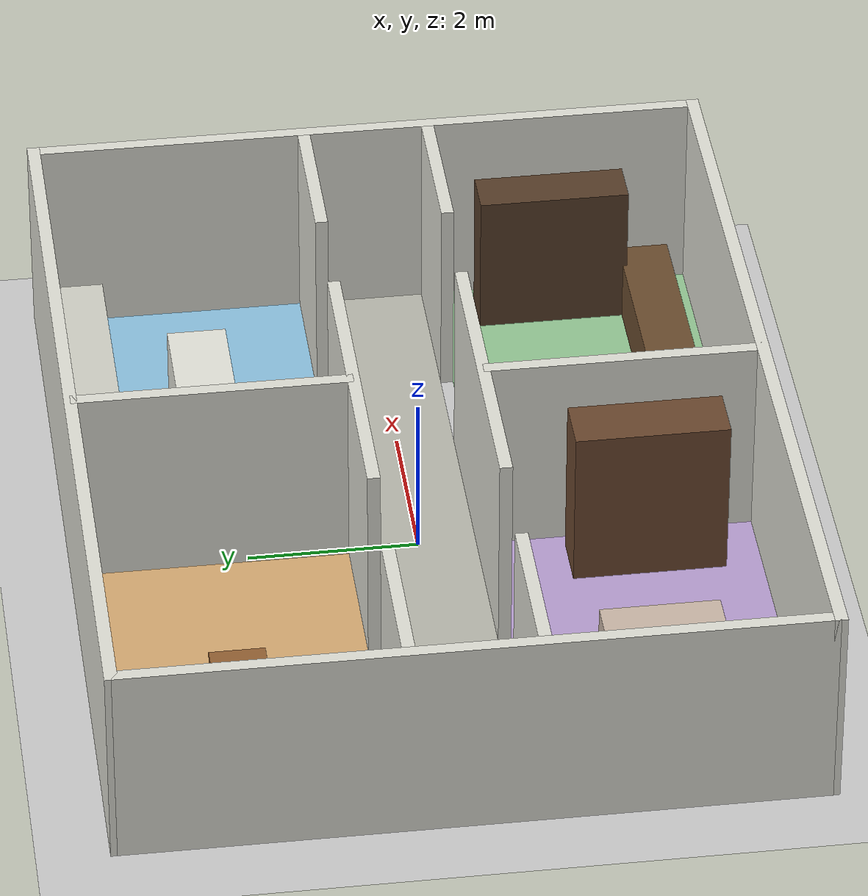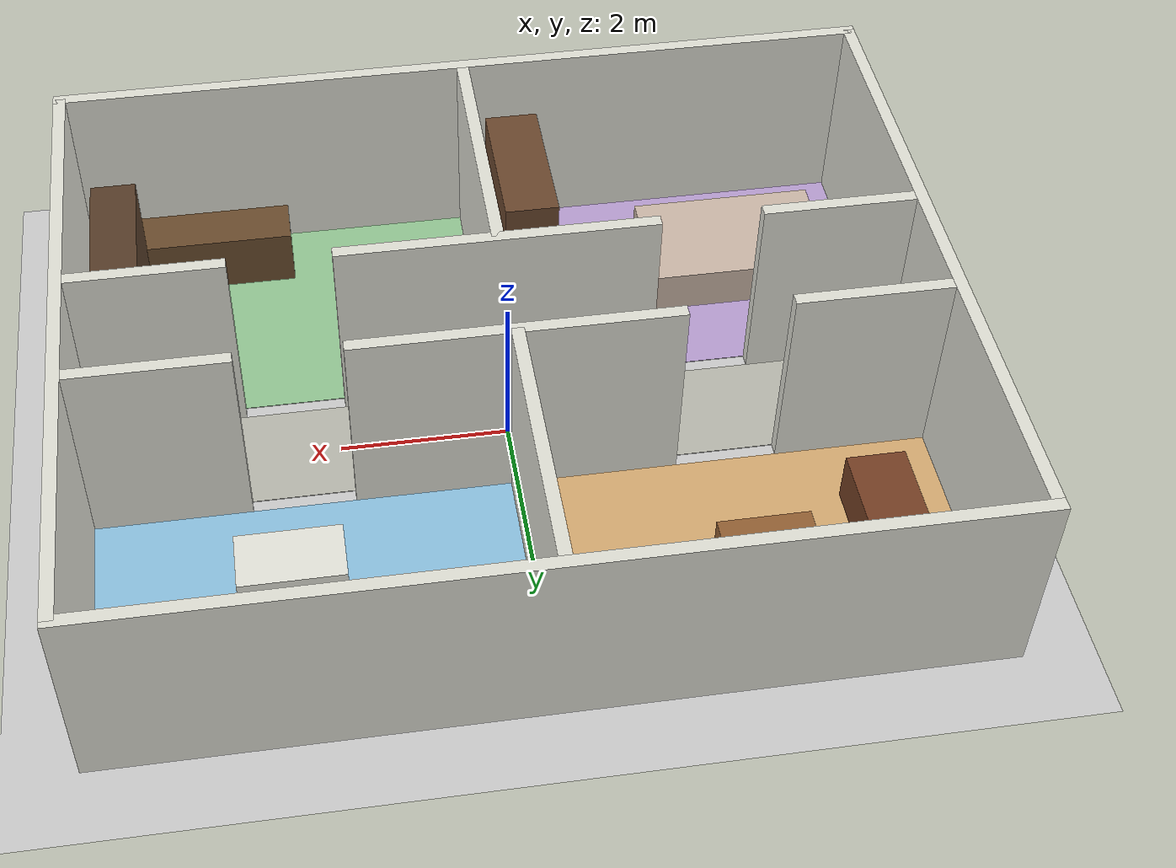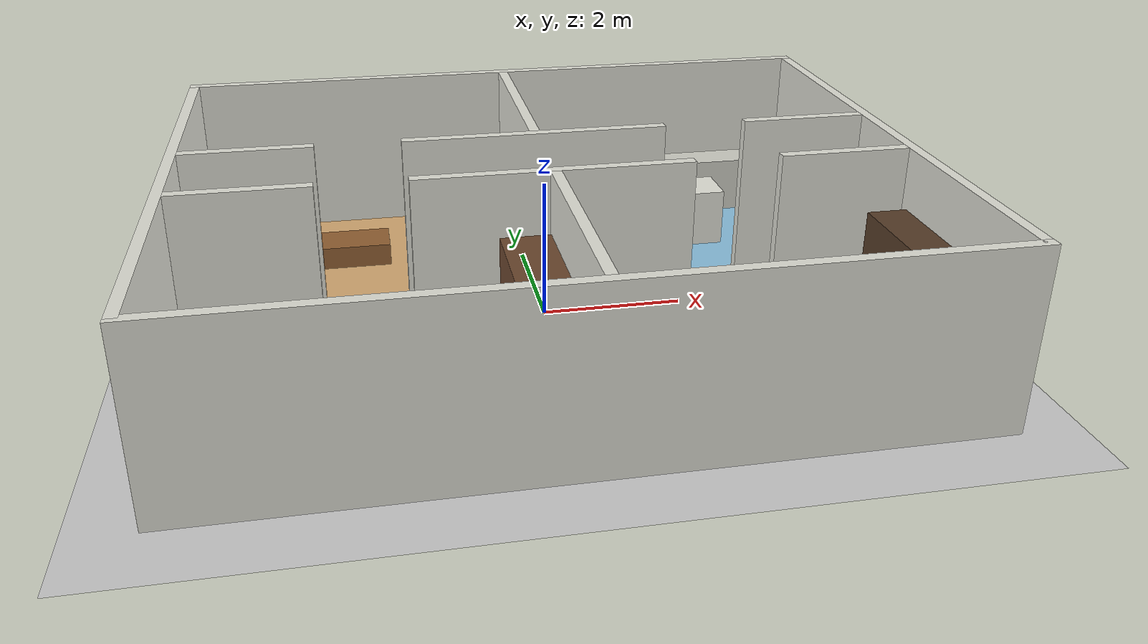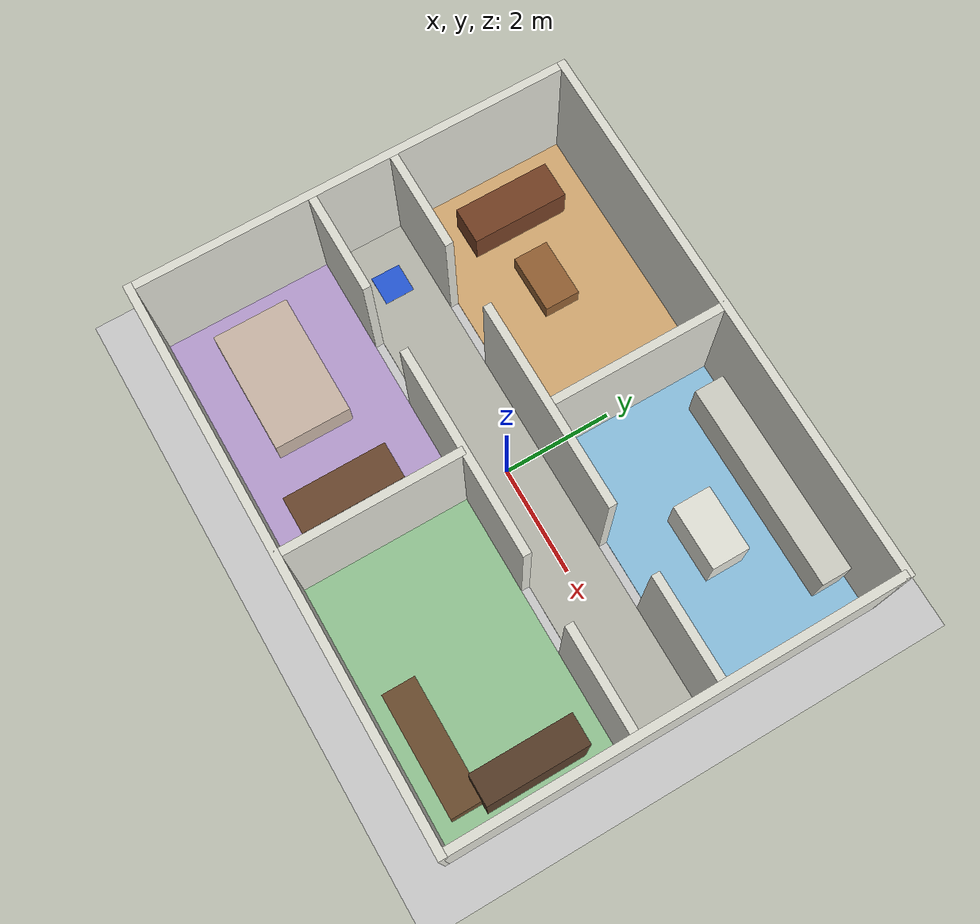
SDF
<?xml version='1.0' encoding='utf-8'?>
<sdf version="1.6">
  <world name="nlp_apartment">
    <include>
      <uri>model://ground_plane</uri>
    </include>
    <include>
      <uri>model://sun</uri>
    </include>
    <physics name="default_physics" type="ode">
      <max_step_size>0.001</max_step_size>
      <real_time_update_rate>1000</real_time_update_rate>
    </physics>
    <scene>
      <ambient>0.55 0.55 0.55 1</ambient>
      <background>0.78 0.82 0.86 1</background>
    </scene>
    <gui fullscreen="false">
      <camera name="apartment_camera">
        <pose>0 -11 10 0 0.65 1.57</pose>
        <view_controller>orbit</view_controller>
      </camera>
    </gui>
    <model name="floor_salon">
      <static>true</static>
      <pose>-2.5 2.375 0.002 0 0 0</pose>
      <link name="link">
        <visual name="visual">
          <geometry>
            <box>
              <size>4.85 3.1 0.01</size>
            </box>
          </geometry>
          <material>
            <ambient>0.84 0.67 0.45 1.0</ambient>
            <diffuse>0.84 0.67 0.45 1.0</diffuse>
          </material>
        </visual>
      </link>
    </model>
    <model name="floor_cuisine">
      <static>true</static>
      <pose>2.5 2.375 0.002 0 0 0</pose>
      <link name="link">
        <visual name="visual">
          <geometry>
            <box>
              <size>4.85 3.1 0.01</size>
            </box>
          </geometry>
          <material>
            <ambient>0.55 0.76 0.88 1.0</ambient>
            <diffuse>0.55 0.76 0.88 1.0</diffuse>
          </material>
        </visual>
      </link>
    </model>
    <model name="floor_chambre">
      <static>true</static>
      <pose>-2.5 -2.375 0.002 0 0 0</pose>
      <link name="link">
        <visual name="visual">
          <geometry>
            <box>
              <size>4.85 3.1 0.01</size>
            </box>
          </geometry>
          <material>
            <ambient>0.72 0.62 0.82 1.0</ambient>
            <diffuse>0.72 0.62 0.82 1.0</diffuse>
          </material>
        </visual>
      </link>
    </model>
    <model name="floor_bureau">
      <static>true</static>
      <pose>2.5 -2.375 0.002 0 0 0</pose>
      <link name="link">
        <visual name="visual">
          <geometry>
            <box>
              <size>4.85 3.1 0.01</size>
            </box>
          </geometry>
          <material>
            <ambient>0.58 0.78 0.58 1.0</ambient>
            <diffuse>0.58 0.78 0.58 1.0</diffuse>
          </material>
        </visual>
      </link>
    </model>
    <model name="floor_couloir">
      <static>true</static>
      <pose>0.0 0.0 0.002 0 0 0</pose>
      <link name="link">
        <visual name="visual">
          <geometry>
            <box>
              <size>9.85 1.35 0.01</size>
            </box>
          </geometry>
          <material>
            <ambient>0.72 0.72 0.68 1.0</ambient>
            <diffuse>0.72 0.72 0.68 1.0</diffuse>
          </material>
        </visual>
      </link>
    </model>
    <model name="floor_chargeur">
      <static>true</static>
      <pose>-4.0 0.0 0.002 0 0 0</pose>
      <link name="link">
        <visual name="visual">
          <geometry>
            <box>
              <size>0.55 0.55 0.015</size>
            </box>
          </geometry>
          <material>
            <ambient>0.15 0.35 0.85 1.0</ambient>
            <diffuse>0.15 0.35 0.85 1.0</diffuse>
          </material>
        </visual>
      </link>
    </model>
    <model name="wall_north">
      <static>true</static>
      <pose>0.0 4.0 1.25 0 0 0</pose>
      <link name="link">
        <collision name="collision">
          <geometry>
            <box>
              <size>10.15 0.15 2.5</size>
            </box>
          </geometry>
        </collision>
        <visual name="visual">
          <geometry>
            <box>
              <size>10.15 0.15 2.5</size>
            </box>
          </geometry>
          <material>
            <ambient>0.88 0.88 0.84 1.0</ambient>
            <diffuse>0.88 0.88 0.84 1.0</diffuse>
          </material>
        </visual>
      </link>
    </model>
    <model name="wall_south">
      <static>true</static>
      <pose>0.0 -4.0 1.25 0 0 0</pose>
      <link name="link">
        <collision name="collision">
          <geometry>
            <box>
              <size>10.15 0.15 2.5</size>
            </box>
          </geometry>
        </collision>
        <visual name="visual">
          <geometry>
            <box>
              <size>10.15 0.15 2.5</size>
            </box>
          </geometry>
          <material>
            <ambient>0.88 0.88 0.84 1.0</ambient>
            <diffuse>0.88 0.88 0.84 1.0</diffuse>
          </material>
        </visual>
      </link>
    </model>
    <model name="wall_west">
      <static>true</static>
      <pose>-5.0 0.0 1.25 0 0 0</pose>
      <link name="link">
        <collision name="collision">
          <geometry>
            <box>
              <size>0.15 8.0 2.5</size>
            </box>
          </geometry>
        </collision>
        <visual name="visual">
          <geometry>
            <box>
              <size>0.15 8.0 2.5</size>
            </box>
          </geometry>
          <material>
            <ambient>0.88 0.88 0.84 1.0</ambient>
            <diffuse>0.88 0.88 0.84 1.0</diffuse>
          </material>
        </visual>
      </link>
    </model>
    <model name="wall_east">
      <static>true</static>
      <pose>5.0 0.0 1.25 0 0 0</pose>
      <link name="link">
        <collision name="collision">
          <geometry>
            <box>
              <size>0.15 8.0 2.5</size>
            </box>
          </geometry>
        </collision>
        <visual name="visual">
          <geometry>
            <box>
              <size>0.15 8.0 2.5</size>
            </box>
          </geometry>
          <material>
            <ambient>0.88 0.88 0.84 1.0</ambient>
            <diffuse>0.88 0.88 0.84 1.0</diffuse>
          </material>
        </visual>
      </link>
    </model>
    <model name="wall_nw_hall">
      <static>true</static>
      <pose>-4.0125 0.75 1.25 0 0 0</pose>
      <link name="link">
        <collision name="collision">
          <geometry>
            <box>
              <size>1.825 0.15 2.5</size>
            </box>
          </geometry>
        </collision>
        <visual name="visual">
          <geometry>
            <box>
              <size>1.825 0.15 2.5</size>
            </box>
          </geometry>
          <material>
            <ambient>0.88 0.88 0.84 1.0</ambient>
            <diffuse>0.88 0.88 0.84 1.0</diffuse>
          </material>
        </visual>
      </link>
    </model>
    <model name="wall_n_center">
      <static>true</static>
      <pose>0.0 0.75 1.25 0 0 0</pose>
      <link name="link">
        <collision name="collision">
          <geometry>
            <box>
              <size>3.8 0.15 2.5</size>
            </box>
          </geometry>
        </collision>
        <visual name="visual">
          <geometry>
            <box>
              <size>3.8 0.15 2.5</size>
            </box>
          </geometry>
          <material>
            <ambient>0.88 0.88 0.84 1.0</ambient>
            <diffuse>0.88 0.88 0.84 1.0</diffuse>
          </material>
        </visual>
      </link>
    </model>
    <model name="wall_ne_hall">
      <static>true</static>
      <pose>4.0125 0.75 1.25 0 0 0</pose>
      <link name="link">
        <collision name="collision">
          <geometry>
            <box>
              <size>1.825 0.15 2.5</size>
            </box>
          </geometry>
        </collision>
        <visual name="visual">
          <geometry>
            <box>
              <size>1.825 0.15 2.5</size>
            </box>
          </geometry>
          <material>
            <ambient>0.88 0.88 0.84 1.0</ambient>
            <diffuse>0.88 0.88 0.84 1.0</diffuse>
          </material>
        </visual>
      </link>
    </model>
    <model name="wall_sw_hall">
      <static>true</static>
      <pose>-4.0125 -0.75 1.25 0 0 0</pose>
      <link name="link">
        <collision name="collision">
          <geometry>
            <box>
              <size>1.825 0.15 2.5</size>
            </box>
          </geometry>
        </collision>
        <visual name="visual">
          <geometry>
            <box>
              <size>1.825 0.15 2.5</size>
            </box>
          </geometry>
          <material>
            <ambient>0.88 0.88 0.84 1.0</ambient>
            <diffuse>0.88 0.88 0.84 1.0</diffuse>
          </material>
        </visual>
      </link>
    </model>
    <model name="wall_s_center">
      <static>true</static>
      <pose>0.0 -0.75 1.25 0 0 0</pose>
      <link name="link">
        <collision name="collision">
          <geometry>
            <box>
              <size>3.8 0.15 2.5</size>
            </box>
          </geometry>
        </collision>
        <visual name="visual">
          <geometry>
            <box>
              <size>3.8 0.15 2.5</size>
            </box>
          </geometry>
          <material>
            <ambient>0.88 0.88 0.84 1.0</ambient>
            <diffuse>0.88 0.88 0.84 1.0</diffuse>
          </material>
        </visual>
      </link>
    </model>
    <model name="wall_se_hall">
      <static>true</static>
      <pose>4.0125 -0.75 1.25 0 0 0</pose>
      <link name="link">
        <collision name="collision">
          <geometry>
            <box>
              <size>1.825 0.15 2.5</size>
            </box>
          </geometry>
        </collision>
        <visual name="visual">
          <geometry>
            <box>
              <size>1.825 0.15 2.5</size>
            </box>
          </geometry>
          <material>
            <ambient>0.88 0.88 0.84 1.0</ambient>
            <diffuse>0.88 0.88 0.84 1.0</diffuse>
          </material>
        </visual>
      </link>
    </model>
    <model name="wall_between_living_kitchen">
      <static>true</static>
      <pose>0.0 2.375 1.25 0 0 0</pose>
      <link name="link">
        <collision name="collision">
          <geometry>
            <box>
              <size>0.15 3.25 2.5</size>
            </box>
          </geometry>
        </collision>
        <visual name="visual">
          <geometry>
            <box>
              <size>0.15 3.25 2.5</size>
            </box>
          </geometry>
          <material>
            <ambient>0.88 0.88 0.84 1.0</ambient>
            <diffuse>0.88 0.88 0.84 1.0</diffuse>
          </material>
        </visual>
      </link>
    </model>
    <model name="wall_between_bed_office">
      <static>true</static>
      <pose>0.0 -2.375 1.25 0 0 0</pose>
      <link name="link">
        <collision name="collision">
          <geometry>
            <box>
              <size>0.15 3.25 2.5</size>
            </box>
          </geometry>
        </collision>
        <visual name="visual">
          <geometry>
            <box>
              <size>0.15 3.25 2.5</size>
            </box>
          </geometry>
          <material>
            <ambient>0.88 0.88 0.84 1.0</ambient>
            <diffuse>0.88 0.88 0.84 1.0</diffuse>
          </material>
        </visual>
      </link>
    </model>
    <model name="salon_canape">
      <static>true</static>
      <pose>-4.05 2.45 0.325 0 0 0</pose>
      <link name="link">
        <collision name="collision">
          <geometry>
            <box>
              <size>0.7 1.8 0.65</size>
            </box>
          </geometry>
        </collision>
        <visual name="visual">
          <geometry>
            <box>
              <size>0.7 1.8 0.65</size>
            </box>
          </geometry>
          <material>
            <ambient>0.46 0.25 0.14 1.0</ambient>
            <diffuse>0.46 0.25 0.14 1.0</diffuse>
          </material>
        </visual>
      </link>
    </model>
    <model name="salon_table">
      <static>true</static>
      <pose>-2.65 2.35 0.175 0 0 0</pose>
      <link name="link">
        <collision name="collision">
          <geometry>
            <box>
              <size>1.1 0.65 0.35</size>
            </box>
          </geometry>
        </collision>
        <visual name="visual">
          <geometry>
            <box>
              <size>1.1 0.65 0.35</size>
            </box>
          </geometry>
          <material>
            <ambient>0.58 0.38 0.2 1.0</ambient>
            <diffuse>0.58 0.38 0.2 1.0</diffuse>
          </material>
        </visual>
      </link>
    </model>
    <model name="cuisine_plan_travail">
      <static>true</static>
      <pose>2.5 3.55 0.45 0 0 0</pose>
      <link name="link">
        <collision name="collision">
          <geometry>
            <box>
              <size>3.8 0.55 0.9</size>
            </box>
          </geometry>
        </collision>
        <visual name="visual">
          <geometry>
            <box>
              <size>3.8 0.55 0.9</size>
            </box>
          </geometry>
          <material>
            <ambient>0.82 0.82 0.78 1.0</ambient>
            <diffuse>0.82 0.82 0.78 1.0</diffuse>
          </material>
        </visual>
      </link>
    </model>
    <model name="cuisine_ilot">
      <static>true</static>
      <pose>2.7 2.25 0.45 0 0 0</pose>
      <link name="link">
        <collision name="collision">
          <geometry>
            <box>
              <size>1.2 0.7 0.9</size>
            </box>
          </geometry>
        </collision>
        <visual name="visual">
          <geometry>
            <box>
              <size>1.2 0.7 0.9</size>
            </box>
          </geometry>
          <material>
            <ambient>0.9 0.9 0.86 1.0</ambient>
            <diffuse>0.9 0.9 0.86 1.0</diffuse>
          </material>
        </visual>
      </link>
    </model>
    <model name="chambre_lit">
      <static>true</static>
      <pose>-3.3 -2.5 0.275 0 0 0</pose>
      <link name="link">
        <collision name="collision">
          <geometry>
            <box>
              <size>2.3 1.4 0.55</size>
            </box>
          </geometry>
        </collision>
        <visual name="visual">
          <geometry>
            <box>
              <size>2.3 1.4 0.55</size>
            </box>
          </geometry>
          <material>
            <ambient>0.8 0.72 0.66 1.0</ambient>
            <diffuse>0.8 0.72 0.66 1.0</diffuse>
          </material>
        </visual>
      </link>
    </model>
    <model name="chambre_armoire">
      <static>true</static>
      <pose>-0.55 -2.6 1.0 0 0 0</pose>
      <link name="link">
        <collision name="collision">
          <geometry>
            <box>
              <size>0.65 1.8 2.0</size>
            </box>
          </geometry>
        </collision>
        <visual name="visual">
          <geometry>
            <box>
              <size>0.65 1.8 2.0</size>
            </box>
          </geometry>
          <material>
            <ambient>0.42 0.28 0.18 1.0</ambient>
            <diffuse>0.42 0.28 0.18 1.0</diffuse>
          </material>
        </visual>
      </link>
    </model>
    <model name="bureau_table">
      <static>true</static>
      <pose>3.45 -3.35 0.375 0 0 0</pose>
      <link name="link">
        <collision name="collision">
          <geometry>
            <box>
              <size>2.2 0.6 0.75</size>
            </box>
          </geometry>
        </collision>
        <visual name="visual">
          <geometry>
            <box>
              <size>2.2 0.6 0.75</size>
            </box>
          </geometry>
          <material>
            <ambient>0.42 0.3 0.18 1.0</ambient>
            <diffuse>0.42 0.3 0.18 1.0</diffuse>
          </material>
        </visual>
      </link>
    </model>
    <model name="bureau_bibliotheque">
      <static>true</static>
      <pose>4.45 -2.2 0.9 0 0 0</pose>
      <link name="link">
        <collision name="collision">
          <geometry>
            <box>
              <size>0.55 1.8 1.8</size>
            </box>
          </geometry>
        </collision>
        <visual name="visual">
          <geometry>
            <box>
              <size>0.55 1.8 1.8</size>
            </box>
          </geometry>
          <material>
            <ambient>0.34 0.24 0.16 1.0</ambient>
            <diffuse>0.34 0.24 0.16 1.0</diffuse>
          </material>
        </visual>
      </link>
    </model>
  </world>
</sdf>
